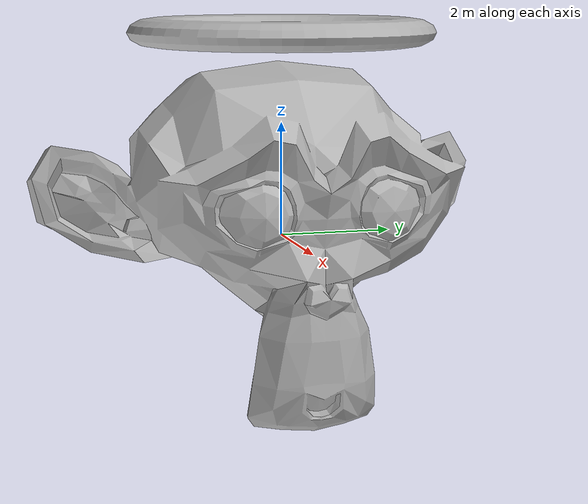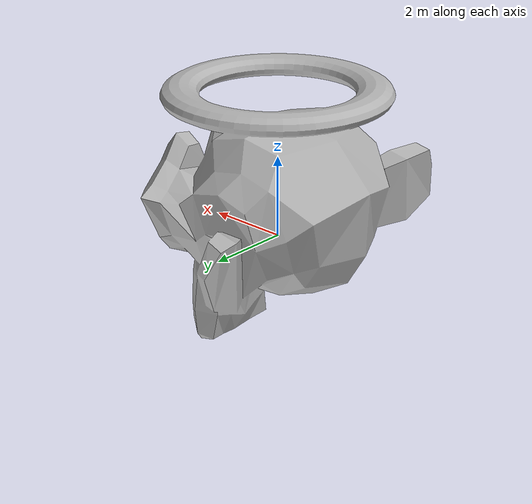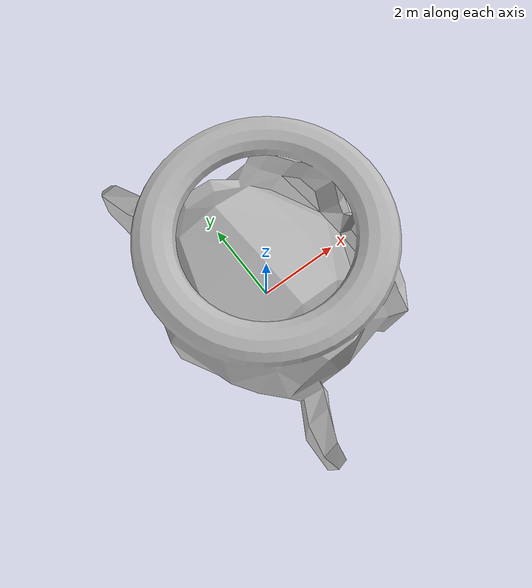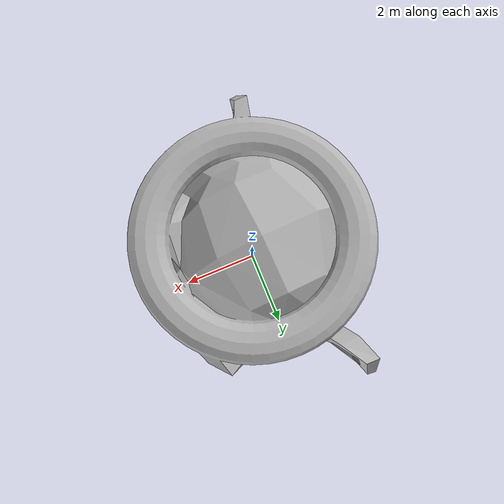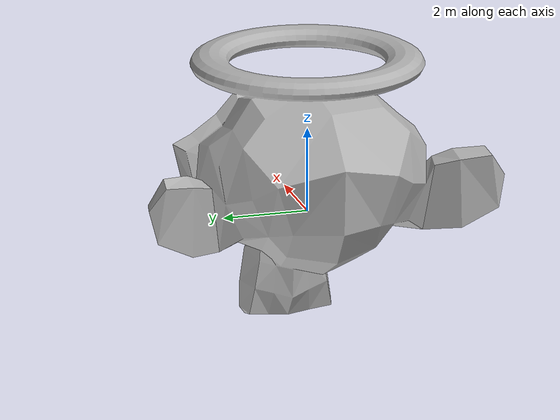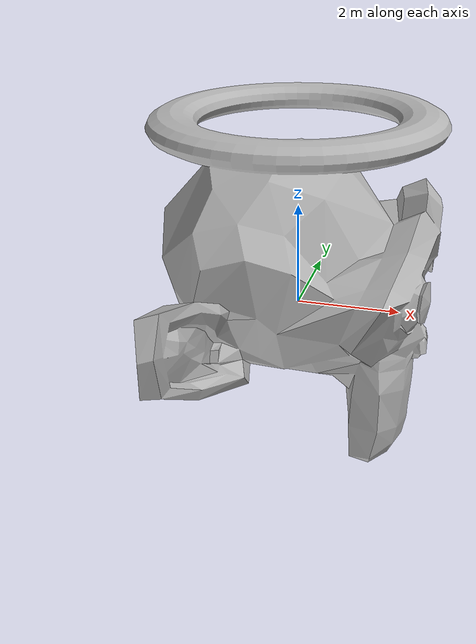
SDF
<?xml version="1.0"?>
<sdf version="1.4">
    <model name="monkey_king">
        <pose>0 0 0 0 0 0</pose>
        <static>true</static>
        <link name="monkey_king">
            <visual name="visual">
                <geometry>
                    <mesh>
                       <uri>model://monkey_king/visual.osg</uri>
                    </mesh>
                </geometry>
            </visual>
            <collision name="collision">
                <geometry>
                    <mesh>
                        <uri>model://monkey_king/collision.stl</uri>
                    </mesh>
                </geometry>
            </collision>
            <inertial>
                <pose>0 0 -1 0 0 0</pose>
                <inertia>
                    <ixx>0.0</ixx>
                    <ixy>0</ixy>
                    <ixz>0.0</ixz>
                    <iyy>0.0</iyy>
                    <iyz>0</iyz>
                    <izz>0.0</izz>
                </inertia>
                <mass>1.0</mass>
            </inertial>
        </link>
    </model>
</sdf>
